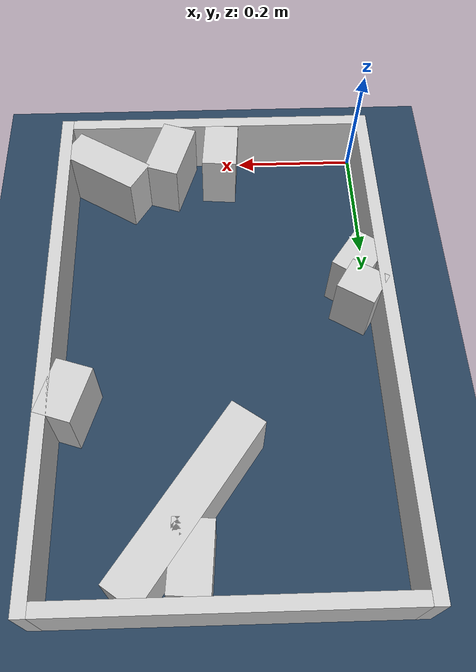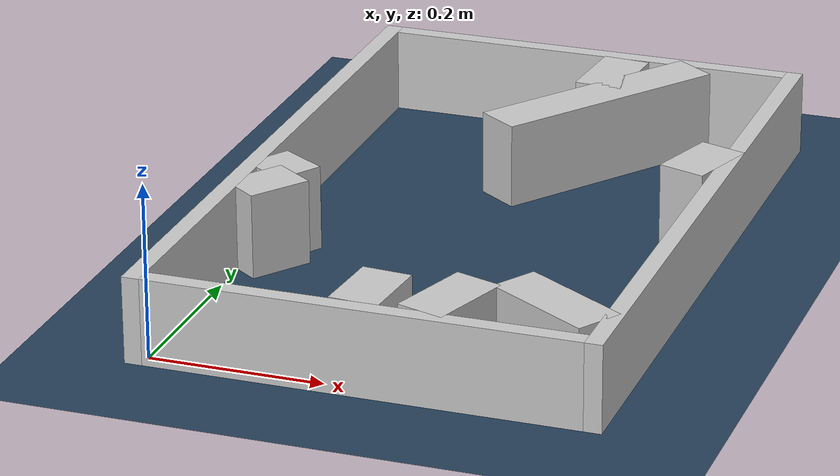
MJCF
<?xml version="1.0" ?>
<mujoco model="generated_real_template">
  <compiler angle="degree"/>
  <option timestep="0.002" integrator="implicitfast" iterations="100" cone="elliptic"/>
  <default>
    <geom density="1"/>
  </default>
  <asset>
    <texture builtin="gradient" height="3072" rgb1="0.3 0.5 0.7" rgb2="0 0 0" type="skybox" width="512"/>
    <texture builtin="checker" height="300" mark="edge" markrgb="0.8 0.8 0.8" name="groundplane" rgb1="0.2 0.3 0.4" rgb2="0.1 0.2 0.3" type="2d" width="300"/>
    <material name="groundplane" reflectance="0.2" texrepeat="5 5" texture="groundplane" texuniform="true"/>
  </asset>
  <worldbody>
    <light dir="0 0 -1" directional="true" pos="0 0 1.5"/>
    <geom name="floor" type="plane" condim="4" friction="0.5 0.005 0.001" material="groundplane" size="0 0 0.05"/>
    <body name="walls">
      <geom name="wall_boundary_left" type="box" condim="4" friction="1.0 0.005 0.0001" rgba="0.8 0.8 0.8 1" pos="-0.010000 0.387500 0.050000" euler="0 0 0.000000" size="0.010000 0.407500 0.050000"/>
      <geom name="wall_boundary_right" type="box" condim="4" friction="1.0 0.005 0.0001" rgba="0.8 0.8 0.8 1" pos="0.500000 0.387500 0.050000" euler="0 0 0.000000" size="0.010000 0.407500 0.050000"/>
      <geom name="wall_boundary_bottom" type="box" condim="4" friction="1.0 0.005 0.0001" rgba="0.8 0.8 0.8 1" pos="0.245000 -0.010000 0.050000" euler="0 0 0.000000" size="0.245000 0.010000 0.050000"/>
      <geom name="wall_boundary_top" type="box" condim="4" friction="1.0 0.005 0.0001" rgba="0.8 0.8 0.8 1" pos="0.245000 0.785000 0.050000" euler="0 0 0.000000" size="0.245000 0.010000 0.050000"/>
      <geom name="wall_inner_1_1" type="box" condim="4" friction="1.0 0.005 0.0001" rgba="0.8 0.8 0.8 1" pos="0.026228 0.326127 0.050000" euler="0 0 -32.115333" size="0.030967 0.028500 0.050000"/>
      <geom name="wall_inner_1_2" type="box" condim="4" friction="1.0 0.005 0.0001" rgba="0.8 0.8 0.8 1" pos="0.430811 0.072183 0.050000" euler="0 0 -32.115333" size="0.069883 0.028500 0.050000"/>
      <geom name="wall_inner_2_1" type="box" condim="4" friction="1.0 0.005 0.0001" rgba="0.8 0.8 0.8 1" pos="0.469357 0.495467 0.050000" euler="0 0 -108.272677" size="0.043308 0.028500 0.050000"/>
      <geom name="wall_inner_2_2" type="box" condim="4" friction="1.0 0.005 0.0001" rgba="0.8 0.8 0.8 1" pos="0.321855 0.048747 0.050000" euler="0 0 -108.272677" size="0.051335 0.028500 0.050000"/>
      <geom name="wall_inner_3_1" type="box" condim="4" friction="1.0 0.005 0.0001" rgba="0.8 0.8 0.8 1" pos="0.025275 0.276280 0.050000" euler="0 0 54.449353" size="0.037986 0.028500 0.050000"/>
      <geom name="wall_inner_3_2" type="box" condim="4" friction="1.0 0.005 0.0001" rgba="0.8 0.8 0.8 1" pos="0.295998 0.655110 0.050000" euler="0 0 54.449353" size="0.147357 0.028500 0.050000"/>
      <geom name="wall_inner_4_1" type="box" condim="4" friction="1.0 0.005 0.0001" rgba="0.8 0.8 0.8 1" pos="0.236328 0.042699 0.050000" euler="0 0 85.358648" size="0.042839 0.028500 0.050000"/>
      <geom name="wall_inner_4_2" type="box" condim="4" friction="1.0 0.005 0.0001" rgba="0.8 0.8 0.8 1" pos="0.291883 0.727002 0.050000" euler="0 0 85.358648" size="0.048155 0.028500 0.050000"/>
    </body>
  </worldbody>
</mujoco>
